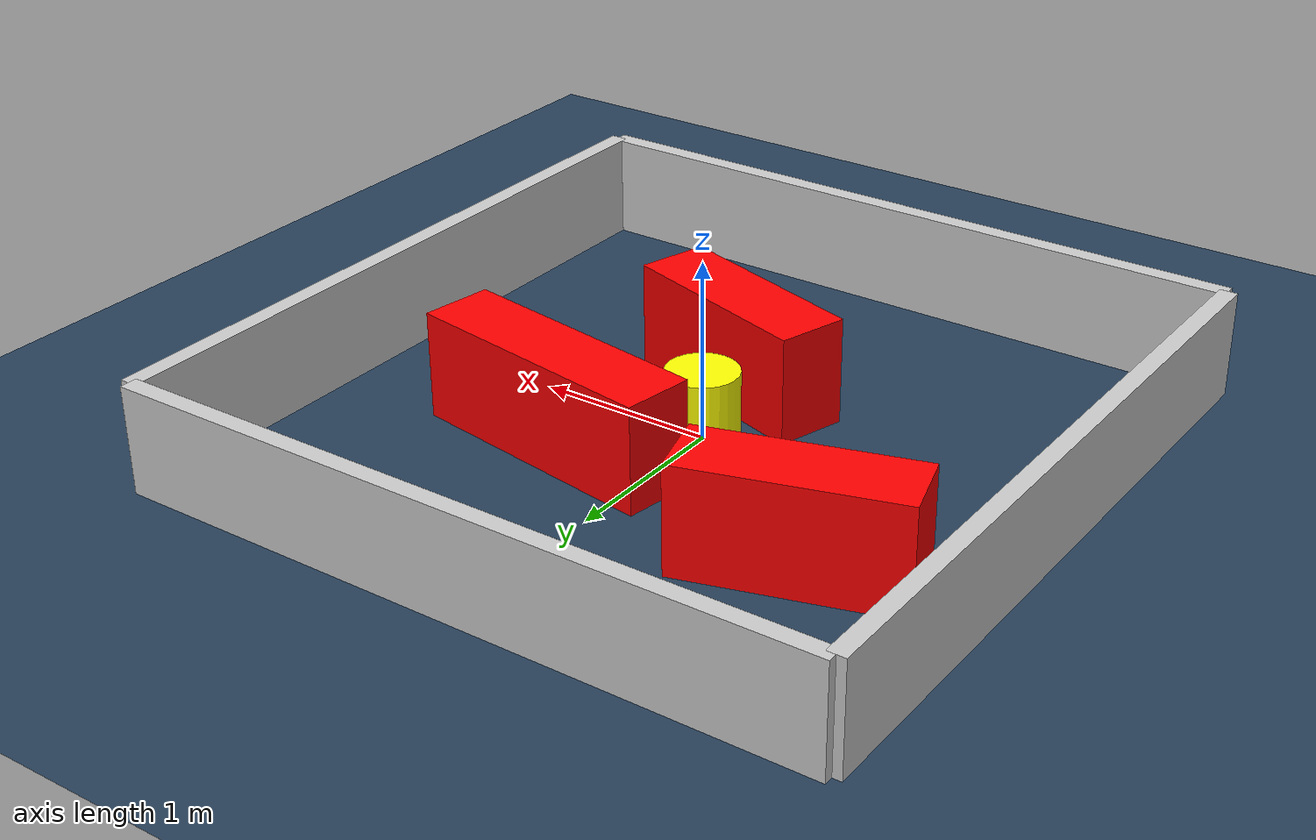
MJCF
<?xml version="1.0" ?>
<mujoco model="generated_environment">
  <option timestep="0.01" integrator="RK4" cone="elliptic"/>
  <default>
    <geom density="1"/>
  </default>
  <asset>
    <texture builtin="gradient" height="3072" rgb1="0.3 0.5 0.7" rgb2="0 0 0" type="skybox" width="512"/>
    <texture builtin="checker" height="300" mark="edge" markrgb="0.8 0.8 0.8" name="groundplane" rgb1="0.2 0.3 0.4" rgb2="0.1 0.2 0.3" type="2d" width="300"/>
    <material name="groundplane" reflectance="0.2" texrepeat="5 5" texture="groundplane" texuniform="true"/>
    <material name="robot" rgba="0.0 1.0 0.0 1"/>
  </asset>
  <worldbody>
    <light dir="0 0 -1" directional="true" pos="0 0 1.5"/>
    <geom condim="4" friction="1.0 0.005 0.001" material="groundplane" name="floor" size="0 0 0.05" type="plane"/>
    <body name="walls">
      <geom name="wall_1" condim="4" pos="-2.0 0.0 0.3" rgba="0.800000011920929 0.800000011920929 0.800000011920929 1.0" size="0.05 2.0 0.3" type="box"/>
      <geom name="wall_2" condim="4" pos="2.0 0.0 0.3" rgba="0.800000011920929 0.800000011920929 0.800000011920929 1.0" size="0.05 2.0 0.3" type="box"/>
      <geom name="wall_3" condim="4" pos="0.0 -2.0 0.3" rgba="0.800000011920929 0.800000011920929 0.800000011920929 1.0" size="2.0 0.05 0.3" type="box"/>
      <geom name="wall_4" condim="4" pos="0.0 2.0 0.3" rgba="0.800000011920929 0.800000011920929 0.800000011920929 1.0" size="2.0 0.05 0.3" type="box"/>
    </body>
    <body name="robot">
      <joint name="joint_x" type="slide" pos="0 0 0" axis="1 0 0"/>
      <joint name="joint_y" type="slide" pos="0 0 0" axis="0 1 0"/>
      <geom name="robot" type="sphere" pos="0.3 0.0 0.2" size="0.05" mass="5." friction="1.0 0.005 0.0001" condim="4" rgba="0.5 0.5 0.5 1.0"/>
      <site name="sensor_ball"/>
    </body>
    <body name="obstacle_movable_1">
      <geom name="obstacle_movable_1" condim="4" pos="0.0 0.0 0.2" euler="0 0 0.0" friction="1.0 0.005 0.001" rgba="1.0 1.0 0.0 1.0" size="0.2 0.2 0.0" type="cylinder" mass="0.1"/>
      <joint type="free"/>
    </body>
    <body name="obstacle_2_static">
      <geom name="obstacle_2_static" condim="4" pos="-1.101195264752465 0.8290396681126169 0.3" euler="0 0 16.162234713734335" friction="1.0 0.005 0.001" rgba="1 0 0 1" size="0.59501435073871 0.2 0.3" type="box"/>
    </body>
    <body name="obstacle_3_static">
      <geom name="obstacle_3_static" condim="4" pos="0.5523259450898848 0.5199495611443179 0.3" euler="0 0 170.78129210009482" friction="1.0 0.005 0.001" rgba="1 0 0 1" size="0.7453029027802669 0.2 0.3" type="box"/>
    </body>
    <body name="obstacle_4_static">
      <geom name="obstacle_4_static" condim="4" pos="0.1276320877404289 -0.5401588498813623 0.3" euler="0 0 162.87290331813568" friction="1.0 0.005 0.001" rgba="1 0 0 1" size="0.5864994209473773 0.2 0.3" type="box"/>
    </body>
  </worldbody>
  <actuator>
    <motor name="actuator_x" joint="joint_x" gear="1" ctrlrange="-1 1"/>
    <motor name="actuator_y" joint="joint_y" gear="1" ctrlrange="-1 1"/>
  </actuator>
</mujoco>
